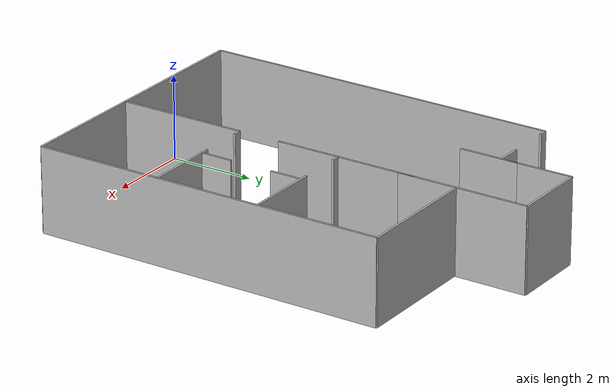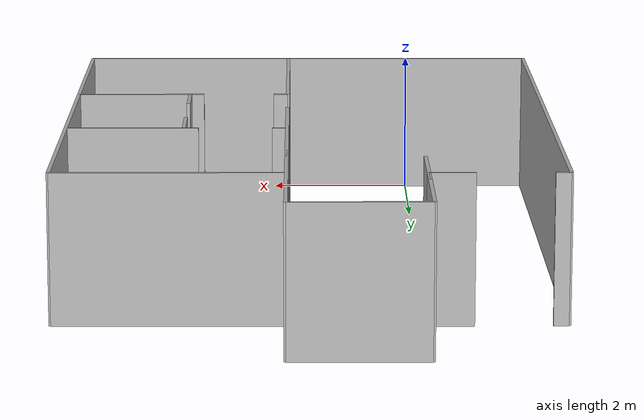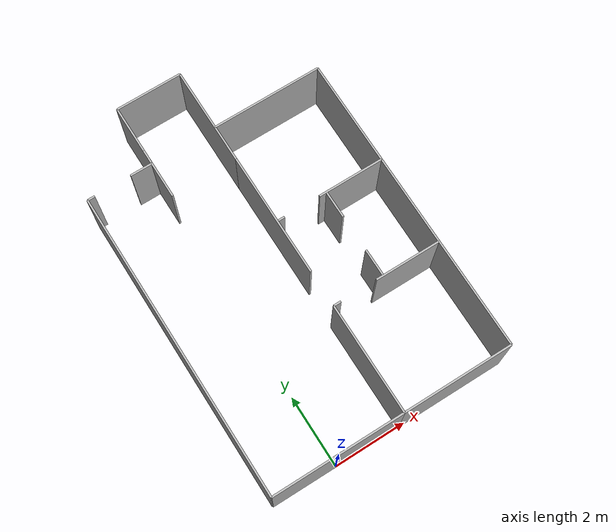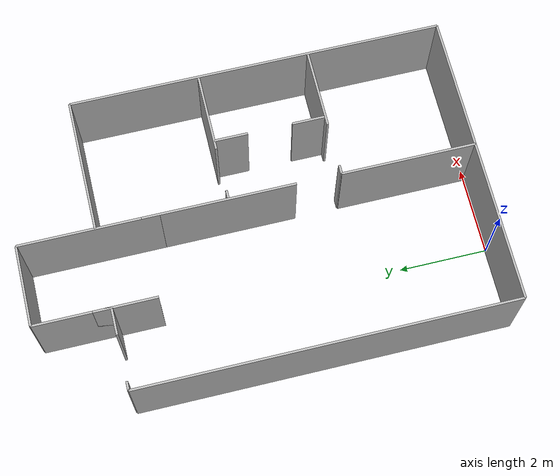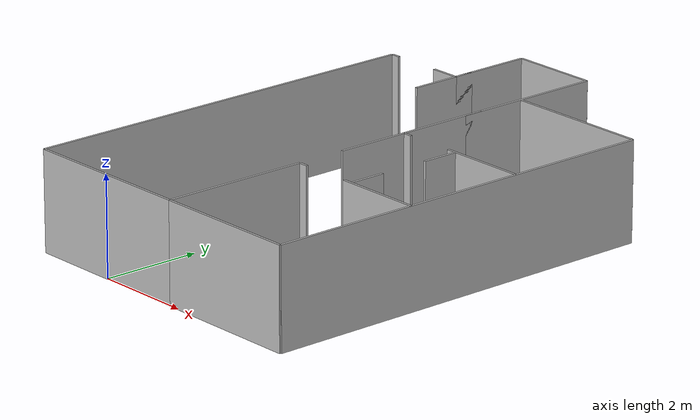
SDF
<?xml version='1.0'?>
<sdf version="1.4">
<model name="hri_two_bedrooms">
  <pose>0 0 0 0 0 0</pose>
  <static>true</static>

    <link name="wall1">
      <pose>0 0 1 0 0 0</pose>
      <inertial>
        <mass>1000.0</mass>
        <inertia> <!-- interias are tricky to compute -->
          <!-- http://answers.gazebosim.org/question/4372/the-inertia-matrix-explained/ -->
          <ixx>0.083</ixx>       <!-- for a box: ixx = 0.083 * mass * (y*y + z*z) -->
          <ixy>0.0</ixy>         <!-- for a box: ixy = 0 -->
          <ixz>0.0</ixz>         <!-- for a box: ixz = 0 -->
          <iyy>0.083</iyy>       <!-- for a box: iyy = 0.083 * mass * (x*x + z*z) -->
          <iyz>0.0</iyz>         <!-- for a box: iyz = 0 -->
          <izz>0.083</izz>       <!-- for a box: izz = 0.083 * mass * (x*x + y*y) -->
        </inertia>
      </inertial>
      <collision name="collision">
        <geometry>
          <box>
            <size>3.6    0.0500    2.0000</size>
          </box>
        </geometry>
      </collision>
      <visual name="visual">
        <geometry>
          <box>
            <size>3.6    0.0500    2.0000</size>
          </box>
        </geometry>
      </visual>
    </link>

    <link name="wall2">
      <pose>-1.8 4.2 1 0 0 0</pose>
      <inertial>
        <mass>1000.0</mass>
        <inertia> <!-- interias are tricky to compute -->
          <!-- http://answers.gazebosim.org/question/4372/the-inertia-matrix-explained/ -->
          <ixx>0.083</ixx>       <!-- for a box: ixx = 0.083 * mass * (y*y + z*z) -->
          <ixy>0.0</ixy>         <!-- for a box: ixy = 0 -->
          <ixz>0.0</ixz>         <!-- for a box: ixz = 0 -->
          <iyy>0.083</iyy>       <!-- for a box: iyy = 0.083 * mass * (x*x + z*z) -->
          <iyz>0.0</iyz>         <!-- for a box: iyz = 0 -->
          <izz>0.083</izz>       <!-- for a box: izz = 0.083 * mass * (x*x + y*y) -->
        </inertia>
      </inertial>
      <collision name="collision">
        <geometry>
          <box>
            <size>0.0500    8.4    2.0000</size>
          </box>
        </geometry>
      </collision>
      <visual name="visual">
        <geometry>
          <box>
            <size>0.0500    8.4    2.0000</size>
          </box>
        </geometry>
      </visual>
    </link>

    <link name="wall3">
      <pose>-1.7 8.4 1 0 0 0</pose>
      <inertial>
        <mass>1000.0</mass>
        <inertia> <!-- interias are tricky to compute -->
          <!-- http://answers.gazebosim.org/question/4372/the-inertia-matrix-explained/ -->
          <ixx>0.083</ixx>       <!-- for a box: ixx = 0.083 * mass * (y*y + z*z) -->
          <ixy>0.0</ixy>         <!-- for a box: ixy = 0 -->
          <ixz>0.0</ixz>         <!-- for a box: ixz = 0 -->
          <iyy>0.083</iyy>       <!-- for a box: iyy = 0.083 * mass * (x*x + z*z) -->
          <iyz>0.0</iyz>         <!-- for a box: iyz = 0 -->
          <izz>0.083</izz>       <!-- for a box: izz = 0.083 * mass * (x*x + y*y) -->
        </inertia>
      </inertial>
      <collision name="collision">
        <geometry>
          <box>
            <size>0.2    0.0500    2.0000</size>
          </box>
        </geometry>
      </collision>
      <visual name="visual">
        <geometry>
          <box>
            <size>0.2    0.0500    2.0000</size>
          </box>
        </geometry>
      </visual>
    </link>

    <link name="wall4">
      <pose>-0.3 8.4 1 0 0 0</pose>
      <inertial>
        <mass>1000.0</mass>
        <inertia> <!-- interias are tricky to compute -->
          <!-- http://answers.gazebosim.org/question/4372/the-inertia-matrix-explained/ -->
          <ixx>0.083</ixx>       <!-- for a box: ixx = 0.083 * mass * (y*y + z*z) -->
          <ixy>0.0</ixy>         <!-- for a box: ixy = 0 -->
          <ixz>0.0</ixz>         <!-- for a box: ixz = 0 -->
          <iyy>0.083</iyy>       <!-- for a box: iyy = 0.083 * mass * (x*x + z*z) -->
          <iyz>0.0</iyz>         <!-- for a box: iyz = 0 -->
          <izz>0.083</izz>       <!-- for a box: izz = 0.083 * mass * (x*x + y*y) -->
        </inertia>
      </inertial>
      <collision name="collision">
        <geometry>
          <box>
            <size>0.6    0.0500    2.0000</size>
          </box>
        </geometry>
      </collision>
      <visual name="visual">
        <geometry>
          <box>
            <size>0.6    0.0500    2.0000</size>
          </box>
        </geometry>
      </visual>
    </link>

    <link name="wall5">
      <pose>0 9.25 1 0 0 0</pose>
      <inertial>
        <mass>1000.0</mass>
        <inertia> <!-- interias are tricky to compute -->
          <!-- http://answers.gazebosim.org/question/4372/the-inertia-matrix-explained/ -->
          <ixx>0.083</ixx>       <!-- for a box: ixx = 0.083 * mass * (y*y + z*z) -->
          <ixy>0.0</ixy>         <!-- for a box: ixy = 0 -->
          <ixz>0.0</ixz>         <!-- for a box: ixz = 0 -->
          <iyy>0.083</iyy>       <!-- for a box: iyy = 0.083 * mass * (x*x + z*z) -->
          <iyz>0.0</iyz>         <!-- for a box: iyz = 0 -->
          <izz>0.083</izz>       <!-- for a box: izz = 0.083 * mass * (x*x + y*y) -->
        </inertia>
      </inertial>
      <collision name="collision">
        <geometry>
          <box>
            <size>0.0500    1.7    2.0000</size>
          </box>
        </geometry>
      </collision>
      <visual name="visual">
        <geometry>
          <box>
            <size>0.0500    1.7    2.0000</size>
          </box>
        </geometry>
      </visual>
    </link>

    <link name="wall6">
      <pose>0.9 10.1 1 0 0 0</pose>
      <inertial>
        <mass>1000.0</mass>
        <inertia> <!-- interias are tricky to compute -->
          <!-- http://answers.gazebosim.org/question/4372/the-inertia-matrix-explained/ -->
          <ixx>0.083</ixx>       <!-- for a box: ixx = 0.083 * mass * (y*y + z*z) -->
          <ixy>0.0</ixy>         <!-- for a box: ixy = 0 -->
          <ixz>0.0</ixz>         <!-- for a box: ixz = 0 -->
          <iyy>0.083</iyy>       <!-- for a box: iyy = 0.083 * mass * (x*x + z*z) -->
          <iyz>0.0</iyz>         <!-- for a box: iyz = 0 -->
          <izz>0.083</izz>       <!-- for a box: izz = 0.083 * mass * (x*x + y*y) -->
        </inertia>
      </inertial>
      <collision name="collision">
        <geometry>
          <box>
            <size>1.8    0.0500    2.0000</size>
          </box>
        </geometry>
      </collision>
      <visual name="visual">
        <geometry>
          <box>
            <size>1.8    0.0500    2.0000</size>
          </box>
        </geometry>
      </visual>
    </link>

    <link name="wall7">
      <pose>1.8 8.55 1 0 0 0</pose>
      <inertial>
        <mass>1000.0</mass>
        <inertia> <!-- interias are tricky to compute -->
          <!-- http://answers.gazebosim.org/question/4372/the-inertia-matrix-explained/ -->
          <ixx>0.083</ixx>       <!-- for a box: ixx = 0.083 * mass * (y*y + z*z) -->
          <ixy>0.0</ixy>         <!-- for a box: ixy = 0 -->
          <ixz>0.0</ixz>         <!-- for a box: ixz = 0 -->
          <iyy>0.083</iyy>       <!-- for a box: iyy = 0.083 * mass * (x*x + z*z) -->
          <iyz>0.0</iyz>         <!-- for a box: iyz = 0 -->
          <izz>0.083</izz>       <!-- for a box: izz = 0.083 * mass * (x*x + y*y) -->
        </inertia>
      </inertial>
      <collision name="collision">
        <geometry>
          <box>
            <size>0.0500    3.1    2.0000</size>
          </box>
        </geometry>
      </collision>
      <visual name="visual">
        <geometry>
          <box>
            <size>0.0500    3.1    2.0000</size>
          </box>
        </geometry>
      </visual>
    </link>

    <link name="wall8">
      <pose>3.3 8.4 1 0 0 0</pose>
      <inertial>
        <mass>1000.0</mass>
        <inertia> <!-- interias are tricky to compute -->
          <!-- http://answers.gazebosim.org/question/4372/the-inertia-matrix-explained/ -->
          <ixx>0.083</ixx>       <!-- for a box: ixx = 0.083 * mass * (y*y + z*z) -->
          <ixy>0.0</ixy>         <!-- for a box: ixy = 0 -->
          <ixz>0.0</ixz>         <!-- for a box: ixz = 0 -->
          <iyy>0.083</iyy>       <!-- for a box: iyy = 0.083 * mass * (x*x + z*z) -->
          <iyz>0.0</iyz>         <!-- for a box: iyz = 0 -->
          <izz>0.083</izz>       <!-- for a box: izz = 0.083 * mass * (x*x + y*y) -->
        </inertia>
      </inertial>
      <collision name="collision">
        <geometry>
          <box>
            <size>3.0    0.0500    2.0000</size>
          </box>
        </geometry>
      </collision>
      <visual name="visual">
        <geometry>
          <box>
            <size>3.0    0.0500    2.0000</size>
          </box>
        </geometry>
      </visual>
    </link>

    <link name="wall9">
      <pose>4.8 4.2 1 0 0 0</pose>
      <inertial>
        <mass>1000.0</mass>
        <inertia> <!-- interias are tricky to compute -->
          <!-- http://answers.gazebosim.org/question/4372/the-inertia-matrix-explained/ -->
          <ixx>0.083</ixx>       <!-- for a box: ixx = 0.083 * mass * (y*y + z*z) -->
          <ixy>0.0</ixy>         <!-- for a box: ixy = 0 -->
          <ixz>0.0</ixz>         <!-- for a box: ixz = 0 -->
          <iyy>0.083</iyy>       <!-- for a box: iyy = 0.083 * mass * (x*x + z*z) -->
          <iyz>0.0</iyz>         <!-- for a box: iyz = 0 -->
          <izz>0.083</izz>       <!-- for a box: izz = 0.083 * mass * (x*x + y*y) -->
        </inertia>
      </inertial>
      <collision name="collision">
        <geometry>
          <box>
            <size>0.0500    8.4    2.0000</size>
          </box>
        </geometry>
      </collision>
      <visual name="visual">
        <geometry>
          <box>
            <size>0.0500    8.4    2.0000</size>
          </box>
        </geometry>
      </visual>
    </link>

    <link name="wall10">
      <pose>3.3 0 1 0 0 0</pose>
      <inertial>
        <mass>1000.0</mass>
        <inertia> <!-- interias are tricky to compute -->
          <!-- http://answers.gazebosim.org/question/4372/the-inertia-matrix-explained/ -->
          <ixx>0.083</ixx>       <!-- for a box: ixx = 0.083 * mass * (y*y + z*z) -->
          <ixy>0.0</ixy>         <!-- for a box: ixy = 0 -->
          <ixz>0.0</ixz>         <!-- for a box: ixz = 0 -->
          <iyy>0.083</iyy>       <!-- for a box: iyy = 0.083 * mass * (x*x + z*z) -->
          <iyz>0.0</iyz>         <!-- for a box: iyz = 0 -->
          <izz>0.083</izz>       <!-- for a box: izz = 0.083 * mass * (x*x + y*y) -->
        </inertia>
      </inertial>
      <collision name="collision">
        <geometry>
          <box>
            <size>3.0    0.0500    2.0000</size>
          </box>
        </geometry>
      </collision>
      <visual name="visual">
        <geometry>
          <box>
            <size>3.0    0.0500    2.0000</size>
          </box>
        </geometry>
      </visual>
    </link>

    <link name="wall11">
      <pose>1.8 1.5 1 0 0 0</pose>
      <inertial>
        <mass>1000.0</mass>
        <inertia> <!-- interias are tricky to compute -->
          <!-- http://answers.gazebosim.org/question/4372/the-inertia-matrix-explained/ -->
          <ixx>0.083</ixx>       <!-- for a box: ixx = 0.083 * mass * (y*y + z*z) -->
          <ixy>0.0</ixy>         <!-- for a box: ixy = 0 -->
          <ixz>0.0</ixz>         <!-- for a box: ixz = 0 -->
          <iyy>0.083</iyy>       <!-- for a box: iyy = 0.083 * mass * (x*x + z*z) -->
          <iyz>0.0</iyz>         <!-- for a box: iyz = 0 -->
          <izz>0.083</izz>       <!-- for a box: izz = 0.083 * mass * (x*x + y*y) -->
        </inertia>
      </inertial>
      <collision name="collision">
        <geometry>
          <box>
            <size>0.0500    3.0    2.0000</size>
          </box>
        </geometry>
      </collision>
      <visual name="visual">
        <geometry>
          <box>
            <size>0.0500    3.0    2.0000</size>
          </box>
        </geometry>
      </visual>
    </link>

    <link name="wall12">
      <pose>1.8 5.7 1 0 0 0</pose>
      <inertial>
        <mass>1000.0</mass>
        <inertia> <!-- interias are tricky to compute -->
          <!-- http://answers.gazebosim.org/question/4372/the-inertia-matrix-explained/ -->
          <ixx>0.083</ixx>       <!-- for a box: ixx = 0.083 * mass * (y*y + z*z) -->
          <ixy>0.0</ixy>         <!-- for a box: ixy = 0 -->
          <ixz>0.0</ixz>         <!-- for a box: ixz = 0 -->
          <iyy>0.083</iyy>       <!-- for a box: iyy = 0.083 * mass * (x*x + z*z) -->
          <iyz>0.0</iyz>         <!-- for a box: iyz = 0 -->
          <izz>0.083</izz>       <!-- for a box: izz = 0.083 * mass * (x*x + y*y) -->
        </inertia>
      </inertial>
      <collision name="collision">
        <geometry>
          <box>
            <size>0.0500    3.4    2.0000</size>
          </box>
        </geometry>
      </collision>
      <visual name="visual">
        <geometry>
          <box>
            <size>0.0500    3.4    2.0000</size>
          </box>
        </geometry>
      </visual>
    </link>

    <link name="wall13">
      <pose>1.9 5.5 1 0 0 0</pose>
      <inertial>
        <mass>1000.0</mass>
        <inertia> <!-- interias are tricky to compute -->
          <!-- http://answers.gazebosim.org/question/4372/the-inertia-matrix-explained/ -->
          <ixx>0.083</ixx>       <!-- for a box: ixx = 0.083 * mass * (y*y + z*z) -->
          <ixy>0.0</ixy>         <!-- for a box: ixy = 0 -->
          <ixz>0.0</ixz>         <!-- for a box: ixz = 0 -->
          <iyy>0.083</iyy>       <!-- for a box: iyy = 0.083 * mass * (x*x + z*z) -->
          <iyz>0.0</iyz>         <!-- for a box: iyz = 0 -->
          <izz>0.083</izz>       <!-- for a box: izz = 0.083 * mass * (x*x + y*y) -->
        </inertia>
      </inertial>
      <collision name="collision">
        <geometry>
          <box>
            <size>0.2    0.0500    2.0000</size>
          </box>
        </geometry>
      </collision>
      <visual name="visual">
        <geometry>
          <box>
            <size>0.2    0.0500    2.0000</size>
          </box>
        </geometry>
      </visual>
    </link>

    <link name="wall14">
      <pose>3.9 5.5 1 0 0 0</pose>
      <inertial>
        <mass>1000.0</mass>
        <inertia> <!-- interias are tricky to compute -->
          <!-- http://answers.gazebosim.org/question/4372/the-inertia-matrix-explained/ -->
          <ixx>0.083</ixx>       <!-- for a box: ixx = 0.083 * mass * (y*y + z*z) -->
          <ixy>0.0</ixy>         <!-- for a box: ixy = 0 -->
          <ixz>0.0</ixz>         <!-- for a box: ixz = 0 -->
          <iyy>0.083</iyy>       <!-- for a box: iyy = 0.083 * mass * (x*x + z*z) -->
          <iyz>0.0</iyz>         <!-- for a box: iyz = 0 -->
          <izz>0.083</izz>       <!-- for a box: izz = 0.083 * mass * (x*x + y*y) -->
        </inertia>
      </inertial>
      <collision name="collision">
        <geometry>
          <box>
            <size>1.8    0.0500    2.0000</size>
          </box>
        </geometry>
      </collision>
      <visual name="visual">
        <geometry>
          <box>
            <size>1.8    0.0500    2.0000</size>
          </box>
        </geometry>
      </visual>
    </link>

    <link name="wall15">
      <pose>1.9 3 1 0 0 0</pose>
      <inertial>
        <mass>1000.0</mass>
        <inertia> <!-- interias are tricky to compute -->
          <!-- http://answers.gazebosim.org/question/4372/the-inertia-matrix-explained/ -->
          <ixx>0.083</ixx>       <!-- for a box: ixx = 0.083 * mass * (y*y + z*z) -->
          <ixy>0.0</ixy>         <!-- for a box: ixy = 0 -->
          <ixz>0.0</ixz>         <!-- for a box: ixz = 0 -->
          <iyy>0.083</iyy>       <!-- for a box: iyy = 0.083 * mass * (x*x + z*z) -->
          <iyz>0.0</iyz>         <!-- for a box: iyz = 0 -->
          <izz>0.083</izz>       <!-- for a box: izz = 0.083 * mass * (x*x + y*y) -->
        </inertia>
      </inertial>
      <collision name="collision">
        <geometry>
          <box>
            <size>0.2    0.0500    2.0000</size>
          </box>
        </geometry>
      </collision>
      <visual name="visual">
        <geometry>
          <box>
            <size>0.2    0.0500    2.0000</size>
          </box>
        </geometry>
      </visual>
    </link>

    <link name="wall16">
      <pose>3.9 3 1 0 0 0</pose>
      <inertial>
        <mass>1000.0</mass>
        <inertia> <!-- interias are tricky to compute -->
          <!-- http://answers.gazebosim.org/question/4372/the-inertia-matrix-explained/ -->
          <ixx>0.083</ixx>       <!-- for a box: ixx = 0.083 * mass * (y*y + z*z) -->
          <ixy>0.0</ixy>         <!-- for a box: ixy = 0 -->
          <ixz>0.0</ixz>         <!-- for a box: ixz = 0 -->
          <iyy>0.083</iyy>       <!-- for a box: iyy = 0.083 * mass * (x*x + z*z) -->
          <iyz>0.0</iyz>         <!-- for a box: iyz = 0 -->
          <izz>0.083</izz>       <!-- for a box: izz = 0.083 * mass * (x*x + y*y) -->
        </inertia>
      </inertial>
      <collision name="collision">
        <geometry>
          <box>
            <size>1.8    0.0500    2.0000</size>
          </box>
        </geometry>
      </collision>
      <visual name="visual">
        <geometry>
          <box>
            <size>1.8    0.0500    2.0000</size>
          </box>
        </geometry>
      </visual>
    </link>

    <link name="wall17">
      <pose>3.9 3 1 0 0 0</pose>
      <inertial>
        <mass>1000.0</mass>
        <inertia> <!-- interias are tricky to compute -->
          <!-- http://answers.gazebosim.org/question/4372/the-inertia-matrix-explained/ -->
          <ixx>0.083</ixx>       <!-- for a box: ixx = 0.083 * mass * (y*y + z*z) -->
          <ixy>0.0</ixy>         <!-- for a box: ixy = 0 -->
          <ixz>0.0</ixz>         <!-- for a box: ixz = 0 -->
          <iyy>0.083</iyy>       <!-- for a box: iyy = 0.083 * mass * (x*x + z*z) -->
          <iyz>0.0</iyz>         <!-- for a box: iyz = 0 -->
          <izz>0.083</izz>       <!-- for a box: izz = 0.083 * mass * (x*x + y*y) -->
        </inertia>
      </inertial>
      <collision name="collision">
        <geometry>
          <box>
            <size>1.8    0.0500    2.0000</size>
          </box>
        </geometry>
      </collision>
      <visual name="visual">
        <geometry>
          <box>
            <size>1.8    0.0500    2.0000</size>
          </box>
        </geometry>
      </visual>
    </link>

    <link name="wall18">
      <pose>3.2 5.125 1 0 0 0</pose>
      <inertial>
        <mass>1000.0</mass>
        <inertia> <!-- interias are tricky to compute -->
          <!-- http://answers.gazebosim.org/question/4372/the-inertia-matrix-explained/ -->
          <ixx>0.083</ixx>       <!-- for a box: ixx = 0.083 * mass * (y*y + z*z) -->
          <ixy>0.0</ixy>         <!-- for a box: ixy = 0 -->
          <ixz>0.0</ixz>         <!-- for a box: ixz = 0 -->
          <iyy>0.083</iyy>       <!-- for a box: iyy = 0.083 * mass * (x*x + z*z) -->
          <iyz>0.0</iyz>         <!-- for a box: iyz = 0 -->
          <izz>0.083</izz>       <!-- for a box: izz = 0.083 * mass * (x*x + y*y) -->
        </inertia>
      </inertial>
      <collision name="collision">
        <geometry>
          <box>
            <size>0.0500    0.75    2.0000</size>
          </box>
        </geometry>
      </collision>
      <visual name="visual">
        <geometry>
          <box>
            <size>0.0500    0.75    2.0000</size>
          </box>
        </geometry>
      </visual>
    </link>

    <link name="wall19">
      <pose>3.2 3.375 1 0 0 0</pose>
      <inertial>
        <mass>1000.0</mass>
        <inertia> <!-- interias are tricky to compute -->
          <!-- http://answers.gazebosim.org/question/4372/the-inertia-matrix-explained/ -->
          <ixx>0.083</ixx>       <!-- for a box: ixx = 0.083 * mass * (y*y + z*z) -->
          <ixy>0.0</ixy>         <!-- for a box: ixy = 0 -->
          <ixz>0.0</ixz>         <!-- for a box: ixz = 0 -->
          <iyy>0.083</iyy>       <!-- for a box: iyy = 0.083 * mass * (x*x + z*z) -->
          <iyz>0.0</iyz>         <!-- for a box: iyz = 0 -->
          <izz>0.083</izz>       <!-- for a box: izz = 0.083 * mass * (x*x + y*y) -->
        </inertia>
      </inertial>
      <collision name="collision">
        <geometry>
          <box>
            <size>0.0500    0.75    2.0000</size>
          </box>
        </geometry>
      </collision>
      <visual name="visual">
        <geometry>
          <box>
            <size>0.0500    0.75    2.0000</size>
          </box>
        </geometry>
      </visual>
    </link>

    <link name="wall20">
      <pose>0 8.1 1 0 0 0</pose>
      <inertial>
        <mass>1000.0</mass>
        <inertia> <!-- interias are tricky to compute -->
          <!-- http://answers.gazebosim.org/question/4372/the-inertia-matrix-explained/ -->
          <ixx>0.083</ixx>       <!-- for a box: ixx = 0.083 * mass * (y*y + z*z) -->
          <ixy>0.0</ixy>         <!-- for a box: ixy = 0 -->
          <ixz>0.0</ixz>         <!-- for a box: ixz = 0 -->
          <iyy>0.083</iyy>       <!-- for a box: iyy = 0.083 * mass * (x*x + z*z) -->
          <iyz>0.0</iyz>         <!-- for a box: iyz = 0 -->
          <izz>0.083</izz>       <!-- for a box: izz = 0.083 * mass * (x*x + y*y) -->
        </inertia>
      </inertial>
      <collision name="collision">
        <geometry>
          <box>
            <size>0.0500    1.4    2.0000</size>
          </box>
        </geometry>
      </collision>
      <visual name="visual">
        <geometry>
          <box>
            <size>0.0500    1.4    2.0000</size>
          </box>
        </geometry>
      </visual>
    </link>

  </model>
</sdf>
